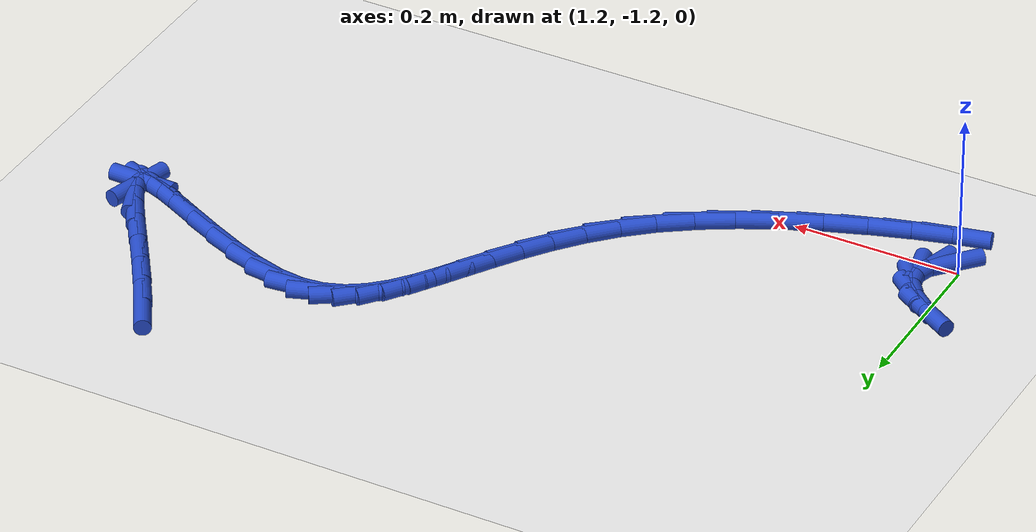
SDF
<sdf version="1.6">
 <world name="default">
  <model name="ground_plane">
   <static>1</static>
   <link name="link">
    <collision name="collision">
     <geometry><plane><normal>0 0 1</normal><size>100 100</size></plane></geometry>
     <surface><friction><ode><mu>100</mu><mu2>50</mu2></ode></friction></surface>
    </collision>
    <visual name="visual">
     <cast_shadows>0</cast_shadows>
     <geometry><plane><normal>0 0 1</normal><size>100 100</size></plane></geometry>
     <material>
      <script><uri>file://media/materials/scripts/gazebo.material</uri><name>Gazebo/WhiteGlow</name></script>
     </material>
    </visual>
   </link>
  </model>
  <model name="line">
   <link name="link_149">
    <pose>1.949578746624958 -0.7122091586160587 0.01 0 1.57 -1.0221637079947594</pose>
    <collision name="collision">
     <geometry><cylinder><radius>0.01</radius><length>0.08</length></cylinder></geometry>
    </collision>
    <visual name="visual">
     <material>
      <script><name>Gazebo/Blue</name><uri>file://media/materials/scripts/gazebo.material</uri></script>
     </material>
     <geometry><cylinder><radius>0.01</radius><length>0.08</length></cylinder></geometry>
    </visual>
   </link>
   <link name="link_150">
    <pose>1.9722840290961356 -0.7493563093449661 0.01 0 1.57 -0.9888592159219053</pose>
    <collision name="collision">
     <geometry><cylinder><radius>0.01</radius><length>0.08</length></cylinder></geometry>
    </collision>
    <visual name="visual">
     <material>
      <script><name>Gazebo/Blue</name><uri>file://media/materials/scripts/gazebo.material</uri></script>
     </material>
     <geometry><cylinder><radius>0.01</radius><length>0.08</length></cylinder></geometry>
    </visual>
   </link>
   <link name="link_151">
    <pose>1.9961054122953594 -0.7855622890376979 0.01 0 1.57 -0.9708630101550615</pose>
    <collision name="collision">
     <geometry><cylinder><radius>0.01</radius><length>0.08</length></cylinder></geometry>
    </collision>
    <visual name="visual">
     <material>
      <script><name>Gazebo/Blue</name><uri>file://media/materials/scripts/gazebo.material</uri></script>
     </material>
     <geometry><cylinder><radius>0.01</radius><length>0.08</length></cylinder></geometry>
    </visual>
   </link>
   <link name="link_152">
    <pose>2.0194871426633574 -0.8197441604588884 0.01 0 1.57 -0.9680200733905873</pose>
    <collision name="collision">
     <geometry><cylinder><radius>0.01</radius><length>0.08</length></cylinder></geometry>
    </collision>
    <visual name="visual">
     <material>
      <script><name>Gazebo/Blue</name><uri>file://media/materials/scripts/gazebo.material</uri></script>
     </material>
     <geometry><cylinder><radius>0.01</radius><length>0.08</length></cylinder></geometry>
    </visual>
   </link>
   <link name="link_153">
    <pose>2.0408734666408583 -0.8508189863731724 0.01 0 1.57 -0.9850648956526716</pose>
    <collision name="collision">
     <geometry><cylinder><radius>0.01</radius><length>0.08</length></cylinder></geometry>
    </collision>
    <visual name="visual">
     <material>
      <script><name>Gazebo/Blue</name><uri>file://media/materials/scripts/gazebo.material</uri></script>
     </material>
     <geometry><cylinder><radius>0.01</radius><length>0.08</length></cylinder></geometry>
    </visual>
   </link>
   <link name="link_154">
    <pose>2.0587086306685896 -0.8777038295451841 0.01 0 1.57 -1.03854459699421</pose>
    <collision name="collision">
     <geometry><cylinder><radius>0.01</radius><length>0.08</length></cylinder></geometry>
    </collision>
    <visual name="visual">
     <material>
      <script><name>Gazebo/Blue</name><uri>file://media/materials/scripts/gazebo.material</uri></script>
     </material>
     <geometry><cylinder><radius>0.01</radius><length>0.08</length></cylinder></geometry>
    </visual>
   </link>
   <link name="link_155">
    <pose>2.071436881187281 -0.8993157527395579 0.01 0 1.57 -1.192373552504631</pose>
    <collision name="collision">
     <geometry><cylinder><radius>0.01</radius><length>0.08</length></cylinder></geometry>
    </collision>
    <visual name="visual">
     <material>
      <script><name>Gazebo/Blue</name><uri>file://media/materials/scripts/gazebo.material</uri></script>
     </material>
     <geometry><cylinder><radius>0.01</radius><length>0.08</length></cylinder></geometry>
    </visual>
   </link>
   <link name="link_156">
    <pose>2.077502464637662 -0.914571818720929 0.01 0 1.57 1.302062962280046</pose>
    <collision name="collision">
     <geometry><cylinder><radius>0.01</radius><length>0.08</length></cylinder></geometry>
    </collision>
    <visual name="visual">
     <material>
      <script><name>Gazebo/Blue</name><uri>file://media/materials/scripts/gazebo.material</uri></script>
     </material>
     <geometry><cylinder><radius>0.01</radius><length>0.08</length></cylinder></geometry>
    </visual>
   </link>
   <link name="link_157">
    <pose>2.0753496274604593 -0.9223890902539305 0.01 0 1.57 -0.02919156981753421</pose>
    <collision name="collision">
     <geometry><cylinder><radius>0.01</radius><length>0.08</length></cylinder></geometry>
    </collision>
    <visual name="visual">
     <material>
      <script><name>Gazebo/Blue</name><uri>file://media/materials/scripts/gazebo.material</uri></script>
     </material>
     <geometry><cylinder><radius>0.01</radius><length>0.08</length></cylinder></geometry>
    </visual>
   </link>
   <link name="link_158">
    <pose>2.0638327449287104 -0.9220527988446751 0.01 0 1.57 -0.3504353048496819</pose>
    <collision name="collision">
     <geometry><cylinder><radius>0.01</radius><length>0.08</length></cylinder></geometry>
    </collision>
    <visual name="visual">
     <material>
      <script><name>Gazebo/Blue</name><uri>file://media/materials/scripts/gazebo.material</uri></script>
     </material>
     <geometry><cylinder><radius>0.01</radius><length>0.08</length></cylinder></geometry>
    </visual>
   </link>
   <link name="link_159">
    <pose>2.0439736181041206 -0.9147938534596156 0.01 0 1.57 -0.43536741277075136</pose>
    <collision name="collision">
     <geometry><cylinder><radius>0.01</radius><length>0.08</length></cylinder></geometry>
    </collision>
    <visual name="visual">
     <material>
      <script><name>Gazebo/Blue</name><uri>file://media/materials/scripts/gazebo.material</uri></script>
     </material>
     <geometry><cylinder><radius>0.01</radius><length>0.08</length></cylinder></geometry>
    </visual>
   </link>
   <link name="link_160">
    <pose>2.01750739340514 -0.902483526388979 0.01 0 1.57 -0.45907212954595633</pose>
    <collision name="collision">
     <geometry><cylinder><radius>0.01</radius><length>0.08</length></cylinder></geometry>
    </collision>
    <visual name="visual">
     <material>
      <script><name>Gazebo/Blue</name><uri>file://media/materials/scripts/gazebo.material</uri></script>
     </material>
     <geometry><cylinder><radius>0.01</radius><length>0.08</length></cylinder></geometry>
    </visual>
   </link>
   <link name="link_161">
    <pose>1.9861696498398338 -0.8869934782545605 0.01 0 1.57 -0.453414583429407</pose>
    <collision name="collision">
     <geometry><cylinder><radius>0.01</radius><length>0.08</length></cylinder></geometry>
    </collision>
    <visual name="visual">
     <material>
      <script><name>Gazebo/Blue</name><uri>file://media/materials/scripts/gazebo.material</uri></script>
     </material>
     <geometry><cylinder><radius>0.01</radius><length>0.08</length></cylinder></geometry>
    </visual>
   </link>
   <link name="link_162">
    <pose>1.9516959664162639 -0.8701953696781556 0.01 0 1.57 -0.42496576586157125</pose>
    <collision name="collision">
     <geometry><cylinder><radius>0.01</radius><length>0.08</length></cylinder></geometry>
    </collision>
    <visual name="visual">
     <material>
      <script><name>Gazebo/Blue</name><uri>file://media/materials/scripts/gazebo.material</uri></script>
     </material>
     <geometry><cylinder><radius>0.01</radius><length>0.08</length></cylinder></geometry>
    </visual>
   </link>
   <link name="link_163">
    <pose>1.9158219221424937 -0.8539608612815591 0.01 0 1.57 -0.37036795672800993</pose>
    <collision name="collision">
     <geometry><cylinder><radius>0.01</radius><length>0.08</length></cylinder></geometry>
    </collision>
    <visual name="visual">
     <material>
      <script><name>Gazebo/Blue</name><uri>file://media/materials/scripts/gazebo.material</uri></script>
     </material>
     <geometry><cylinder><radius>0.01</radius><length>0.08</length></cylinder></geometry>
    </visual>
   </link>
   <link name="link_164">
    <pose>1.880283096026586 -0.8401616136865663 0.01 0 1.57 -0.2763657869574351</pose>
    <collision name="collision">
     <geometry><cylinder><radius>0.01</radius><length>0.08</length></cylinder></geometry>
    </collision>
    <visual name="visual">
     <material>
      <script><name>Gazebo/Blue</name><uri>file://media/materials/scripts/gazebo.material</uri></script>
     </material>
     <geometry><cylinder><radius>0.01</radius><length>0.08</length></cylinder></geometry>
    </visual>
   </link>
   <link name="link_165">
    <pose>1.8468150670766033 -0.8306692875149719 0.01 0 1.57 -0.11583058281156969</pose>
    <collision name="collision">
     <geometry><cylinder><radius>0.01</radius><length>0.08</length></cylinder></geometry>
    </collision>
    <visual name="visual">
     <material>
      <script><name>Gazebo/Blue</name><uri>file://media/materials/scripts/gazebo.material</uri></script>
     </material>
     <geometry><cylinder><radius>0.01</radius><length>0.08</length></cylinder></geometry>
    </visual>
   </link>
   <link name="link_166">
    <pose>1.817004520143855 -0.8272007886334546 0.01 0 1.57 0.1061987243998445</pose>
    <collision name="collision">
     <geometry><cylinder><radius>0.01</radius><length>0.08</length></cylinder></geometry>
    </collision>
    <visual name="visual">
     <material>
      <script><name>Gazebo/Blue</name><uri>file://media/materials/scripts/gazebo.material</uri></script>
     </material>
     <geometry><cylinder><radius>0.01</radius><length>0.08</length></cylinder></geometry>
    </visual>
   </link>
   <link name="link_167">
    <pose>1.7909952775208937 -0.8299733680745858 0.01 0 1.57 0.35150695838775703</pose>
    <collision name="collision">
     <geometry><cylinder><radius>0.01</radius><length>0.08</length></cylinder></geometry>
    </collision>
    <visual name="visual">
     <material>
      <script><name>Gazebo/Blue</name><uri>file://media/materials/scripts/gazebo.material</uri></script>
     </material>
     <geometry><cylinder><radius>0.01</radius><length>0.08</length></cylinder></geometry>
    </visual>
   </link>
   <link name="link_168">
    <pose>1.768120992607688 -0.8383622190541093 0.01 0 1.57 0.5798606661829186</pose>
    <collision name="collision">
     <geometry><cylinder><radius>0.01</radius><length>0.08</length></cylinder></geometry>
    </collision>
    <visual name="visual">
     <material>
      <script><name>Gazebo/Blue</name><uri>file://media/materials/scripts/gazebo.material</uri></script>
     </material>
     <geometry><cylinder><radius>0.01</radius><length>0.08</length></cylinder></geometry>
    </visual>
   </link>
   <link name="link_169">
    <pose>1.7477063327498181 -0.8517331950347755 0.01 0 1.57 0.7603296879092345</pose>
    <collision name="collision">
     <geometry><cylinder><radius>0.01</radius><length>0.08</length></cylinder></geometry>
    </collision>
    <visual name="visual">
     <material>
      <script><name>Gazebo/Blue</name><uri>file://media/materials/scripts/gazebo.material</uri></script>
     </material>
     <geometry><cylinder><radius>0.01</radius><length>0.08</length></cylinder></geometry>
    </visual>
   </link>
   <link name="link_170">
    <pose>1.7290759652928653 -0.869452149479335 0.01 0 1.57 0.8854724358418631</pose>
    <collision name="collision">
     <geometry><cylinder><radius>0.01</radius><length>0.08</length></cylinder></geometry>
    </collision>
    <visual name="visual">
     <material>
      <script><name>Gazebo/Blue</name><uri>file://media/materials/scripts/gazebo.material</uri></script>
     </material>
     <geometry><cylinder><radius>0.01</radius><length>0.08</length></cylinder></geometry>
    </visual>
   </link>
   <link name="link_171">
    <pose>1.711554557582409 -0.890884935850538 0.01 0 1.57 0.9620155749867771</pose>
    <collision name="collision">
     <geometry><cylinder><radius>0.01</radius><length>0.08</length></cylinder></geometry>
    </collision>
    <visual name="visual">
     <material>
      <script><name>Gazebo/Blue</name><uri>file://media/materials/scripts/gazebo.material</uri></script>
     </material>
     <geometry><cylinder><radius>0.01</radius><length>0.08</length></cylinder></geometry>
    </visual>
   </link>
   <link name="link_172">
    <pose>1.6944667769640298 -0.9153974076111355 0.01 0 1.57 0.999476262364372</pose>
    <collision name="collision">
     <geometry><cylinder><radius>0.01</radius><length>0.08</length></cylinder></geometry>
    </collision>
    <visual name="visual">
     <material>
      <script><name>Gazebo/Blue</name><uri>file://media/materials/scripts/gazebo.material</uri></script>
     </material>
     <geometry><cylinder><radius>0.01</radius><length>0.08</length></cylinder></geometry>
    </visual>
   </link>
   <link name="link_173">
    <pose>1.6771372907833095 -0.9423554182238771 0.01 0 1.57 1.0055845972044002</pose>
    <collision name="collision">
     <geometry><cylinder><radius>0.01</radius><length>0.08</length></cylinder></geometry>
    </collision>
    <visual name="visual">
     <material>
      <script><name>Gazebo/Blue</name><uri>file://media/materials/scripts/gazebo.material</uri></script>
     </material>
     <geometry><cylinder><radius>0.01</radius><length>0.08</length></cylinder></geometry>
    </visual>
   </link>
   <link name="link_174">
    <pose>1.6588907663858277 -0.9711248211515132 0.01 0 1.57 0.9857015145109574</pose>
    <collision name="collision">
     <geometry><cylinder><radius>0.01</radius><length>0.08</length></cylinder></geometry>
    </collision>
    <visual name="visual">
     <material>
      <script><name>Gazebo/Blue</name><uri>file://media/materials/scripts/gazebo.material</uri></script>
     </material>
     <geometry><cylinder><radius>0.01</radius><length>0.08</length></cylinder></geometry>
    </visual>
   </link>
   <link name="link_175">
    <pose>1.6390518711171649 -1.0010714698567944 0.01 0 1.57 0.9434552103711635</pose>
    <collision name="collision">
     <geometry><cylinder><radius>0.01</radius><length>0.08</length></cylinder></geometry>
    </collision>
    <visual name="visual">
     <material>
      <script><name>Gazebo/Blue</name><uri>file://media/materials/scripts/gazebo.material</uri></script>
     </material>
     <geometry><cylinder><radius>0.01</radius><length>0.08</length></cylinder></geometry>
    </visual>
   </link>
   <link name="link_176">
    <pose>1.6169452723229016 -1.0315612178024711 0.01 0 1.57 0.8815699285675789</pose>
    <collision name="collision">
     <geometry><cylinder><radius>0.01</radius><length>0.08</length></cylinder></geometry>
    </collision>
    <visual name="visual">
     <material>
      <script><name>Gazebo/Blue</name><uri>file://media/materials/scripts/gazebo.material</uri></script>
     </material>
     <geometry><cylinder><radius>0.01</radius><length>0.08</length></cylinder></geometry>
    </visual>
   </link>
   <link name="link_177">
    <pose>1.5918956373486184 -1.0619599184512936 0.01 0 1.57 0.8026312356233487</pose>
    <collision name="collision">
     <geometry><cylinder><radius>0.01</radius><length>0.08</length></cylinder></geometry>
    </collision>
    <visual name="visual">
     <material>
      <script><name>Gazebo/Blue</name><uri>file://media/materials/scripts/gazebo.material</uri></script>
     </material>
     <geometry><cylinder><radius>0.01</radius><length>0.08</length></cylinder></geometry>
    </visual>
   </link>
   <link name="link_178">
    <pose>1.5632276335398965 -1.091633425266013 0.01 0 1.57 0.7096969536588301</pose>
    <collision name="collision">
     <geometry><cylinder><radius>0.01</radius><length>0.08</length></cylinder></geometry>
    </collision>
    <visual name="visual">
     <material>
      <script><name>Gazebo/Blue</name><uri>file://media/materials/scripts/gazebo.material</uri></script>
     </material>
     <geometry><cylinder><radius>0.01</radius><length>0.08</length></cylinder></geometry>
    </visual>
   </link>
   <link name="link_179">
    <pose>1.5302659282423152 -1.1199475917093789 0.01 0 1.57 0.6094409971050727</pose>
    <collision name="collision">
     <geometry><cylinder><radius>0.01</radius><length>0.08</length></cylinder></geometry>
    </collision>
    <visual name="visual">
     <material>
      <script><name>Gazebo/Blue</name><uri>file://media/materials/scripts/gazebo.material</uri></script>
     </material>
     <geometry><cylinder><radius>0.01</radius><length>0.08</length></cylinder></geometry>
    </visual>
   </link>
   <link name="link_180">
    <pose>1.4925004957442736 -1.1463111536528034 0.01 0 1.57 0.5239101076376718</pose>
    <collision name="collision">
     <geometry><cylinder><radius>0.01</radius><length>0.08</length></cylinder></geometry>
    </collision>
    <visual name="visual">
     <material>
      <script><name>Gazebo/Blue</name><uri>file://media/materials/scripts/gazebo.material</uri></script>
     </material>
     <geometry><cylinder><radius>0.01</radius><length>0.08</length></cylinder></geometry>
    </visual>
   </link>
   <link name="link_181">
    <pose>1.4506969936151188 -1.1704637730065215 0.01 0 1.57 0.4563220407886031</pose>
    <collision name="collision">
     <geometry><cylinder><radius>0.01</radius><length>0.08</length></cylinder></geometry>
    </collision>
    <visual name="visual">
     <material>
      <script><name>Gazebo/Blue</name><uri>file://media/materials/scripts/gazebo.material</uri></script>
     </material>
     <geometry><cylinder><radius>0.01</radius><length>0.08</length></cylinder></geometry>
    </visual>
   </link>
   <link name="link_182">
    <pose>1.4062146642776052 -1.1922990940110012 0.01 0 1.57 0.4009106361040687</pose>
    <collision name="collision">
     <geometry><cylinder><radius>0.01</radius><length>0.08</length></cylinder></geometry>
    </collision>
    <visual name="visual">
     <material>
      <script><name>Gazebo/Blue</name><uri>file://media/materials/scripts/gazebo.material</uri></script>
     </material>
     <geometry><cylinder><radius>0.01</radius><length>0.08</length></cylinder></geometry>
    </visual>
   </link>
   <link name="link_183">
    <pose>1.3604160508030716 -1.2117116171306497 0.01 0 1.57 0.35353095990796657</pose>
    <collision name="collision">
     <geometry><cylinder><radius>0.01</radius><length>0.08</length></cylinder></geometry>
    </collision>
    <visual name="visual">
     <material>
      <script><name>Gazebo/Blue</name><uri>file://media/materials/scripts/gazebo.material</uri></script>
     </material>
     <geometry><cylinder><radius>0.01</radius><length>0.08</length></cylinder></geometry>
    </visual>
   </link>
   <link name="link_184">
    <pose>1.3146636962628604 -1.2285958428298744 0.01 0 1.57 0.3109399044044219</pose>
    <collision name="collision">
     <geometry><cylinder><radius>0.01</radius><length>0.08</length></cylinder></geometry>
    </collision>
    <visual name="visual">
     <material>
      <script><name>Gazebo/Blue</name><uri>file://media/materials/scripts/gazebo.material</uri></script>
     </material>
     <geometry><cylinder><radius>0.01</radius><length>0.08</length></cylinder></geometry>
    </visual>
   </link>
   <link name="link_185">
    <pose>1.2703201437283118 -1.2428462715730832 0.01 0 1.57 0.2701270300398732</pose>
    <collision name="collision">
     <geometry><cylinder><radius>0.01</radius><length>0.08</length></cylinder></geometry>
    </collision>
    <visual name="visual">
     <material>
      <script><name>Gazebo/Blue</name><uri>file://media/materials/scripts/gazebo.material</uri></script>
     </material>
     <geometry><cylinder><radius>0.01</radius><length>0.08</length></cylinder></geometry>
    </visual>
   </link>
   <link name="link_186">
    <pose>1.2287479362707676 -1.2543574038246827 0.01 0 1.57 0.2274764662732101</pose>
    <collision name="collision">
     <geometry><cylinder><radius>0.01</radius><length>0.08</length></cylinder></geometry>
    </collision>
    <visual name="visual">
     <material>
      <script><name>Gazebo/Blue</name><uri>file://media/materials/scripts/gazebo.material</uri></script>
     </material>
     <geometry><cylinder><radius>0.01</radius><length>0.08</length></cylinder></geometry>
    </visual>
   </link>
   <link name="link_196">
    <pose>1.212931074404374 -1.2014375134864246 0.01 0 1.57 0.8430277162531806</pose>
    <collision name="collision">
     <geometry><cylinder><radius>0.01</radius><length>0.08</length></cylinder></geometry>
    </collision>
    <visual name="visual">
     <material>
      <script><name>Gazebo/Blue</name><uri>file://media/materials/scripts/gazebo.material</uri></script>
     </material>
     <geometry><cylinder><radius>0.01</radius><length>0.08</length></cylinder></geometry>
    </visual>
   </link>
   <link name="link_197">
    <pose>1.229488957106724 -1.1828520928323636 0.01 0 1.57 1.2838760376924032</pose>
    <collision name="collision">
     <geometry><cylinder><radius>0.01</radius><length>0.08</length></cylinder></geometry>
    </collision>
    <visual name="visual">
     <material>
      <script><name>Gazebo/Blue</name><uri>file://media/materials/scripts/gazebo.material</uri></script>
     </material>
     <geometry><cylinder><radius>0.01</radius><length>0.08</length></cylinder></geometry>
    </visual>
   </link>
   <link name="link_198">
    <pose>1.2350648319136552 -1.1639547872617182 0.01 0 1.57 -1.344049291241632</pose>
    <collision name="collision">
     <geometry><cylinder><radius>0.01</radius><length>0.08</length></cylinder></geometry>
    </collision>
    <visual name="visual">
     <material>
      <script><name>Gazebo/Blue</name><uri>file://media/materials/scripts/gazebo.material</uri></script>
     </material>
     <geometry><cylinder><radius>0.01</radius><length>0.08</length></cylinder></geometry>
    </visual>
   </link>
   <link name="link_199">
    <pose>1.2307049708367879 -1.1450575872181652 0.01 0 1.57 -0.9515954431707602</pose>
    <collision name="collision">
     <geometry><cylinder><radius>0.01</radius><length>0.08</length></cylinder></geometry>
    </collision>
    <visual name="visual">
     <material>
      <script><name>Gazebo/Blue</name><uri>file://media/materials/scripts/gazebo.material</uri></script>
     </material>
     <geometry><cylinder><radius>0.01</radius><length>0.08</length></cylinder></geometry>
    </visual>
   </link>
   <link name="link_200">
    <pose>1.2174591416720846 -1.1264722526889106 0.01 0 1.57 -0.7056490730217276</pose>
    <collision name="collision">
     <geometry><cylinder><radius>0.01</radius><length>0.08</length></cylinder></geometry>
    </collision>
    <visual name="visual">
     <material>
      <script><name>Gazebo/Blue</name><uri>file://media/materials/scripts/gazebo.material</uri></script>
     </material>
     <geometry><cylinder><radius>0.01</radius><length>0.08</length></cylinder></geometry>
    </visual>
   </link>
   <link name="link_201">
    <pose>1.196377112215507 -1.108510543661159 0.01 0 1.57 -0.5484343563513366</pose>
    <collision name="collision">
     <geometry><cylinder><radius>0.01</radius><length>0.08</length></cylinder></geometry>
    </collision>
    <visual name="visual">
     <material>
      <script><name>Gazebo/Blue</name><uri>file://media/materials/scripts/gazebo.material</uri></script>
     </material>
     <geometry><cylinder><radius>0.01</radius><length>0.08</length></cylinder></geometry>
    </visual>
   </link>
  </model>
 </world>
</sdf>
